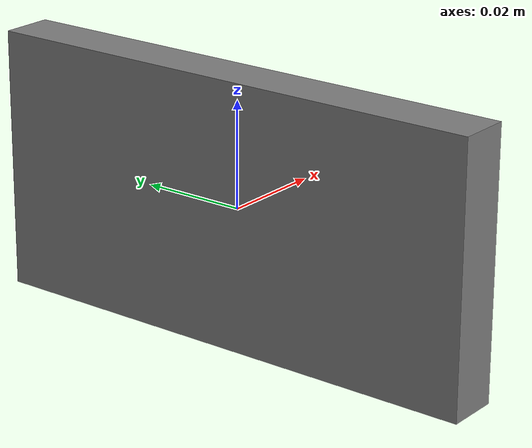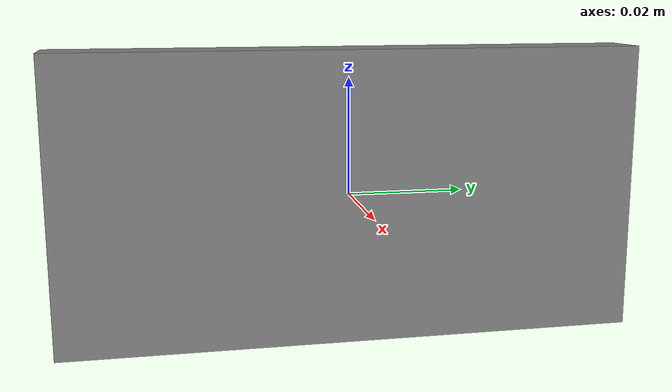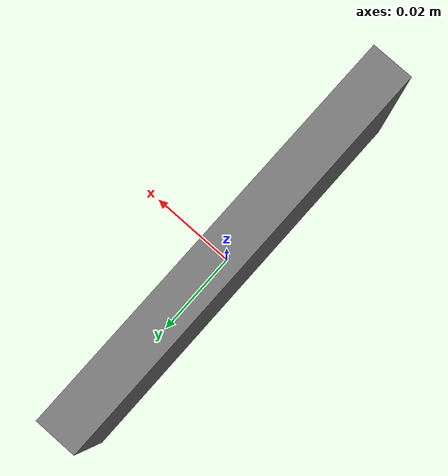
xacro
<?xml version="1.0"?>
<robot xmlns:xacro="http://www.ros.org/wiki/xacro">

    <xacro:property name="camera_length" value="0.01" />
    <xacro:property name="camera_width" value="0.1" />
    <xacro:property name="camera_height" value="0.05" />

    <material name="grey">
        <color rgba="0.5 0.5 0.5 1" />
    </material>

    <xacro:macro name="box_inertia" params="m x y z o_xyz o_rpy">
        <inertial>
            <mass value="${m}" />
            <origin xyz="${o_xyz}" rpy="${o_rpy}" />
            <inertia ixx="${(m/12) * (y*y + z*z)}" ixy="0" ixz="0"
                     iyy="${(m/12) * (x*x + z*z)}" iyz="0"
                     izz="${(m/12) * (x*x + y*y)}" />
        </inertial>
    </xacro:macro>

    <link name="camera_link">
        <visual>
            <geometry>
                <box size="${camera_length} ${camera_width} ${camera_height}" />
            </geometry>
            <material name="grey" />
        </visual>
        <collision>
            <geometry>
                <box size="${camera_length} ${camera_width} ${camera_height}" />
            </geometry>
        </collision>
        <xacro:box_inertia m="0.1" x="${camera_length}" y="${camera_width}" z="${camera_height}"
                           o_xyz="0 0 0" o_rpy="0 0 0" />
    </link>

    <link name="camera_link_optical" />

    <joint name="camera_optical_joint" type="fixed">
        <origin xyz="0 0 0" rpy="${-pi/2} 0 ${-pi/2}"/>
        <parent link="camera_link"/>
        <child link="camera_link_optical"/>
    </joint>

    <gazebo reference="camera_link">
        <sensor name="camera" type="camera">
            <camera>
                <horizontal_fov>1.3962634</horizontal_fov>
                <image>
                    <width>640</width>
                    <height>480</height>
                    <format>R8G8B8</format>
                </image>
                <clip>
                    <near>0.1</near>
                    <far>15</far>
                </clip>
                <noise>
                    <type>gaussian</type>
                    <mean>0.0</mean>
                    <stddev>0.007</stddev>
                </noise>
                <optical_frame_id>camera_link_optical</optical_frame_id>
                <camera_info_topic>camera/camera_info</camera_info_topic>
            </camera>
            <always_on>1</always_on>
            <update_rate>60</update_rate>
            <visualize>true</visualize>
            <topic>camera/image_raw</topic>
        </sensor>
    </gazebo>

</robot>
